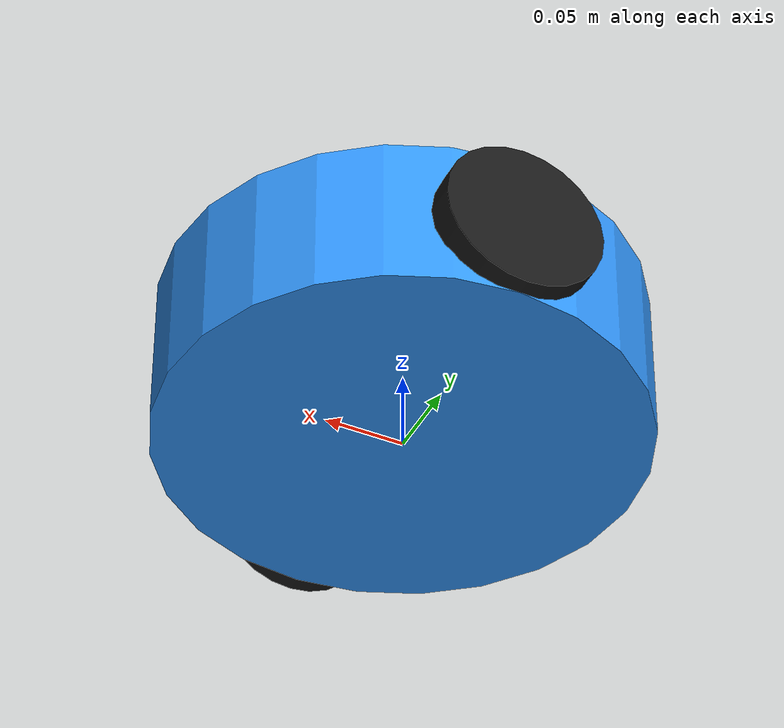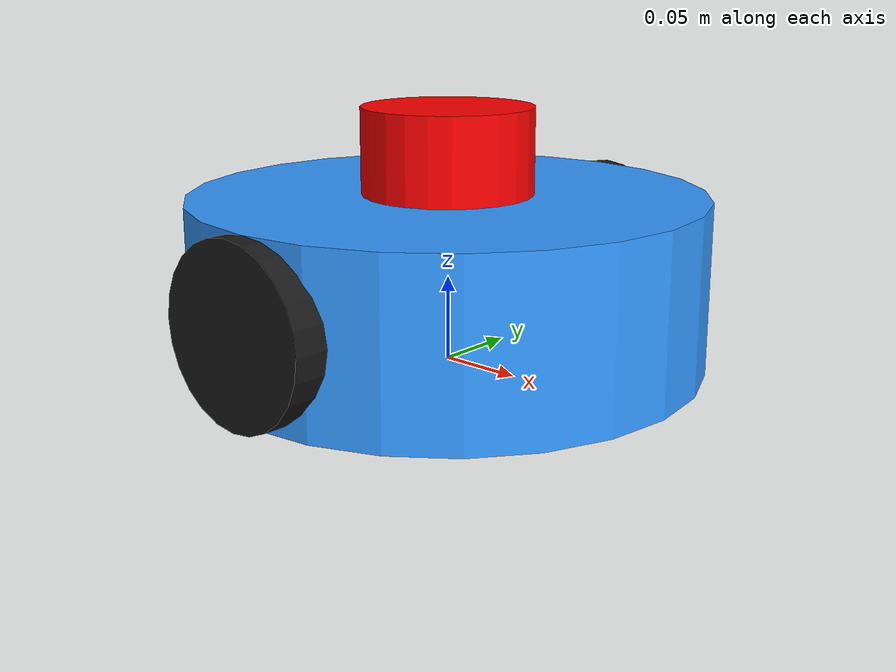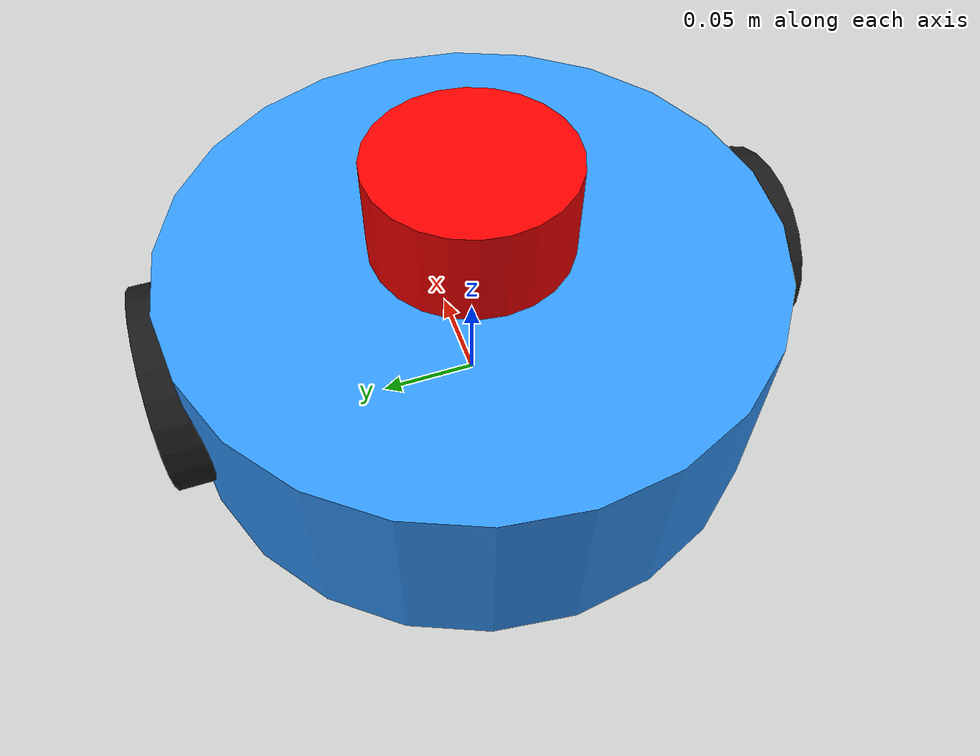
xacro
<?xml version="1.0"?>
<robot xmlns:xacro="http://www.ros.org/wiki/xacro" name="smart_bot">

    <!-- 定義一些常用的常數 -->
    <xacro:property name="base_radius" value="0.15" /> <!-- 底盤半徑 -->
    <xacro:property name="base_height" value="0.1" />  <!-- 底盤高度 -->
    <xacro:property name="wheel_radius" value="0.05" /> <!-- 輪子半徑 -->
    <xacro:property name="wheel_width" value="0.02" />  <!-- 輪子寬度 -->
    <xacro:property name="caster_radius" value="0.025" /> <!-- 滾珠輪半徑 -->
    <xacro:property name="laser_size" value="0.05" /> <!-- 雷射尺寸 -->

    <!-- 慣性矩陣計算的宏 -->
    <xacro:macro name="box_inertia" params="m w h d">
        <inertial>
            <mass value="${m}"/>
            <inertia ixx="${m*(h*h+d*d)/12}" ixy="0" ixz="0" iyy="${m*(w*w+d*d)/12}" iyz="0" izz="${m*(w*w+h*h)/12}"/>
        </inertial>
    </xacro:macro>
    <xacro:macro name="cylinder_inertia" params="m r h">
        <inertial>
            <mass value="${m}"/>
            <inertia ixx="${m*(3*r*r+h*h)/12}" ixy="0" ixz="0" iyy="${m*(3*r*r+h*h)/12}" iyz="0" izz="${m*r*r/2}"/>
        </inertial>
    </xacro:macro>
    <xacro:macro name="sphere_inertia" params="m r">
        <inertial>
            <mass value="${m}"/>
            <inertia ixx="${2*m*r*r/5}" ixy="0" ixz="0" iyy="${2*m*r*r/5}" iyz="0" izz="${2*m*r*r/5}"/>
        </inertial>
    </xacro:macro>

    <!-- 1. 機器人主體 (底盤) -->
    <link name="base_footprint"/>

    <link name="base_link">
        <visual>
            <geometry>
                <cylinder radius="${base_radius}" length="${base_height}"/>
            </geometry>
            <material name="blue">
                <color rgba="0.2 0.6 1.0 1.0"/>
            </material>
        </visual>
        <collision>
            <geometry>
                <cylinder radius="${base_radius}" length="${base_height}"/>
            </geometry>
        </collision>
        <xacro:cylinder_inertia m="5.0" r="${base_radius}" h="${base_height}"/>
    </link>

    <joint name="base_joint" type="fixed">
        <parent link="base_footprint"/>
        <child link="base_link"/>
        <origin xyz="0 0 ${wheel_radius}" rpy="0 0 0"/>
    </joint>

    <!-- 2. 右輪 -->
    <link name="right_wheel">
        <visual>
            <geometry>
                <cylinder radius="${wheel_radius}" length="${wheel_width}"/>
            </geometry>
            <material name="black">
                <color rgba="0.1 0.1 0.1 1.0"/>
            </material>
        </visual>
        <collision>
            <geometry>
                <cylinder radius="${wheel_radius}" length="${wheel_width}"/>
            </geometry>
        </collision>
        <xacro:cylinder_inertia m="0.5" r="${wheel_radius}" h="${wheel_width}"/>
    </link>

    <joint name="right_wheel_joint" type="continuous">
        <parent link="base_link"/>
        <child link="right_wheel"/>
        <origin xyz="0 -${base_radius} -${base_height/2 - wheel_radius}" rpy="-${pi/2} 0 0"/>
        <axis xyz="0 0 1"/>
    </joint>

    <!-- 3. 左輪 -->
    <link name="left_wheel">
        <visual>
            <geometry>
                <cylinder radius="${wheel_radius}" length="${wheel_width}"/>
            </geometry>
            <material name="black"/>
        </visual>
        <collision>
            <geometry>
                <cylinder radius="${wheel_radius}" length="${wheel_width}"/>
            </geometry>
        </collision>
        <xacro:cylinder_inertia m="0.5" r="${wheel_radius}" h="${wheel_width}"/>
    </link>

    <joint name="left_wheel_joint" type="continuous">
        <parent link="base_link"/>
        <child link="left_wheel"/>
        <origin xyz="0 ${base_radius} -${base_height/2 - wheel_radius}" rpy="${pi/2} 0 0"/>
        <axis xyz="0 0 -1"/>
    </joint>

    <!-- 4. 前方滾珠輪 -->
    <link name="caster_wheel">
        <visual>
            <geometry>
                <sphere radius="${caster_radius}"/>
            </geometry>
            <material name="grey">
                <color rgba="0.5 0.5 0.5 1.0"/>
            </material>
        </visual>
        <collision>
            <geometry>
                <sphere radius="${caster_radius}"/>
            </geometry>
        </collision>
        <xacro:sphere_inertia m="0.3" r="${caster_radius}"/>
    </link>

    <joint name="caster_wheel_joint" type="fixed">
        <parent link="base_link"/>
        <child link="caster_wheel"/>
        <origin xyz="${base_radius*0.8} 0 -${base_height/2 - caster_radius}" rpy="0 0 0"/>
    </joint>

    <!-- 5. 雷射掃描儀 (LIDAR) -->
    <link name="laser_link">
        <visual>
            <geometry>
                <cylinder radius="${laser_size}" length="${laser_size}"/>
            </geometry>
            <material name="red">
                <color rgba="1.0 0.0 0.0 1.0"/>
            </material>
        </visual>
        <collision>
            <geometry>
                <cylinder radius="${laser_size}" length="${laser_size}"/>
            </geometry>
        </collision>
        <xacro:cylinder_inertia m="0.1" r="${laser_size}" h="${laser_size}"/>
    </link>

    <joint name="laser_joint" type="fixed">
        <parent link="base_link"/>
        <child link="laser_link"/>
        <origin xyz="0 0 ${base_height/2 + laser_size/2}" rpy="0 0 0"/>
    </joint>

    <!-- Gazebo 插件 -->

    <!-- 1. 差速驅動插件 (讓輪子動起來) -->
    <gazebo>
        <plugin name="differential_drive_controller" filename="libgazebo_ros_diff_drive.so">
            <alwaysOn>true</alwaysOn>
            <updateRate>100</updateRate>
            <leftJoint>left_wheel_joint</leftJoint>
            <rightJoint>right_wheel_joint</rightJoint>
            <wheelSeparation>${base_radius*2}</wheelSeparation>
            <wheelDiameter>${wheel_radius*2}</wheelDiameter>
            <torque>20</torque>
            <!-- 這個插件會訂閱 /cmd_vel 主題 -->
            <commandTopic>cmd_vel</commandTopic>
            <!-- 這個插件會發布 odom 主題 -->
            <odometryTopic>odom</odometryTopic>
            <odometryFrame>odom</odometryFrame>
            <robotBaseFrame>base_footprint</robotBaseFrame>
        </plugin>
    </gazebo>

    <!-- 2. 雷射掃描儀插件 -->
    <gazebo reference="laser_link">
        <sensor type="ray" name="laser_sensor">
            <pose>0 0 0 0 0 0</pose>
            <visualize>true</visualize>
            <update_rate>10</update_rate>
            <ray>
                <scan>
                    <horizontal>
                        <samples>360</samples>
                        <resolution>1</resolution>
                        <min_angle>-3.14159</min_angle>
                        <max_angle>3.14159</max_angle>
                    </horizontal>
                </scan>
                <range>
                    <min>0.1</min>
                    <max>12.0</max>
                    <resolution>0.01</resolution>
                </range>
            </ray>
            <plugin name="gazebo_ros_laser" filename="libgazebo_ros_laser.so">
                <!-- 這個插件會發布 /scan 主題 -->
                <topicName>/scan</topicName>
                <frameName>laser_link</frameName>
            </plugin>
        </sensor>
    </gazebo>

</robot>
